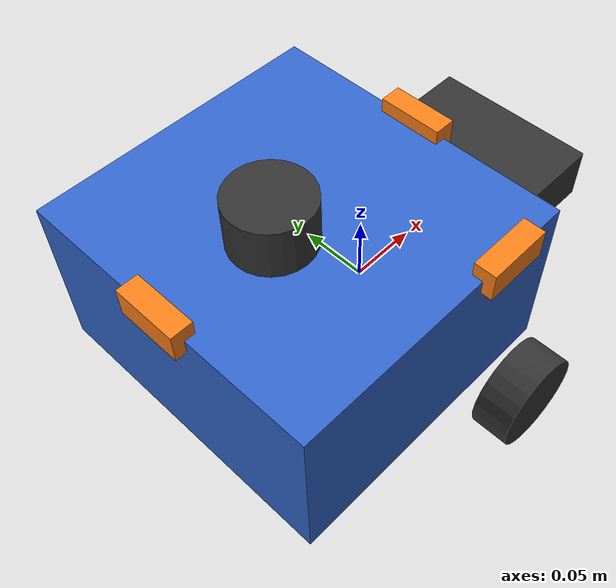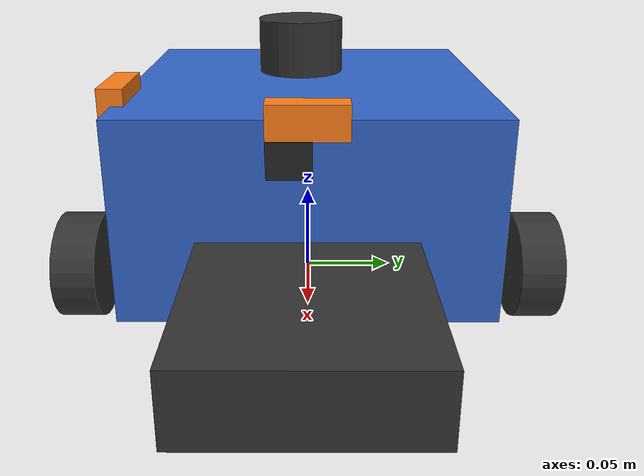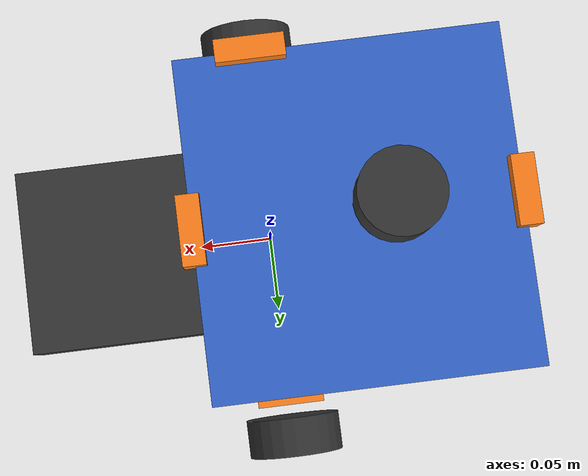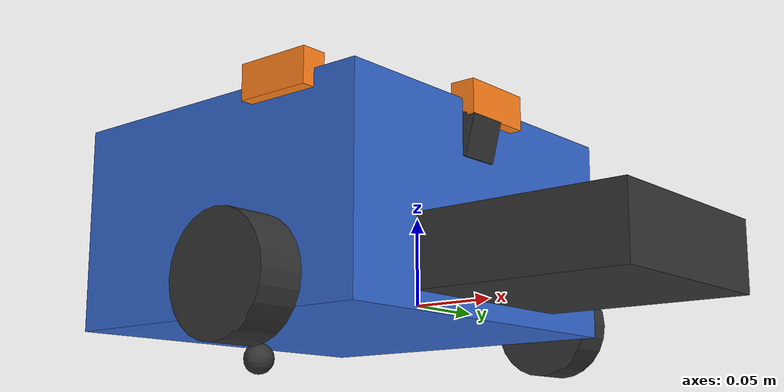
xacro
<?xml version="1.0"?>
<robot name="poli" xmlns:xacro="http://www.ros.org/wiki/xacro">

  <!-- ===== 차체 ===== -->
  <xacro:property name="wheel_radius" value="0.0325"/>       <!-- 바퀴 Ø65 mm (제품 사양서_E). 주행 시험으로 보정 (TODO_MEASURE) -->
  <xacro:property name="wheel_width" value="0.026"/>         <!-- 고무 바퀴 Ø65 × 26 mm (제품 사양서_E) -->
  <xacro:property name="wheel_separation" value="0.279"/>    <!-- 바퀴 포함 폭 305 - 바퀴 폭 26 (2026-10-30 줄자). 회전 시험으로 보정 (TODO_MEASURE, hardware.yaml과 같게) -->
  <xacro:property name="body_length" value="0.21"/>          <!-- 집게 제외 차체 길이 210 mm (2026-10-30 실측) -->
  <xacro:property name="body_width" value="0.22"/>           <!-- 바퀴 제외 차체 폭 220 mm (2026-10-30 실측) -->
  <xacro:property name="body_bottom_h" value="0.02"/>        <!-- 차체 바닥의 지면 높이 (TODO_MEASURE) -->
  <xacro:property name="body_top_h" value="0.14"/>           <!-- 차체 윗면의 지면 높이 (TODO_MEASURE) -->
  <!-- 2026-10-30 실측: 바퀴 축 = 차체 뒤끝에서 160 mm, 볼캐스터 = 뒤끝에서 30 mm (좌우 가운데) -->
  <xacro:property name="axle_from_rear" value="0.16"/>
  <xacro:property name="body_center_x" value="${body_length / 2 - axle_from_rear}"/>
  <xacro:property name="caster_x" value="${0.03 - axle_from_rear}"/>

  <!-- ===== LiDAR (RPLIDAR C1) =====
       laser 높이 = 장착면 높이 + 0.0298. 외벽·장애물(0.20 m)보다 낮아야 한다.
       frame 이름 'laser'는 sllidar_ros2 기본값·poli_navigation fake_scan과 같다. -->
  <xacro:property name="lidar_x" value="${0.08 - axle_from_rear}"/>  <!-- 중심이 뒤끝에서 약 80 mm: 사진 추정 (TODO_MEASURE, scan_to_grid.py LASER_OFFSET과 맞출 것) -->
  <xacro:property name="lidar_y" value="${body_width / 2 - 0.115}"/>  <!-- 중심이 좌측 끝에서 115 mm (2026-10-30 실측) = 오른쪽 5 mm -->
  <xacro:property name="lidar_mount_h" value="${body_top_h}"/>  <!-- 장착면 지면 높이 (TODO_MEASURE) -->
  <xacro:property name="lidar_yaw" value="0.0"/>             <!-- 스캔 0도 방향이 정면이 되게 (TODO_MEASURE) -->

  <!-- ===== IMU (MPU6050 GY-521, 파이 I2C 버스 3. 2026-10-30 RRC Lite 내장 IMU -> MPU6050) ===== -->
  <!-- 모듈의 X 화살표가 로봇 앞, 칩이 위면 yaw 0 -->
  <xacro:property name="imu_x" value="0.0"/>                 <!-- MPU6050 위치, base_link 기준 앞(+) (TODO_MEASURE) -->
  <xacro:property name="imu_y" value="0.0"/>                 <!-- 왼쪽(+) (TODO_MEASURE) -->
  <xacro:property name="imu_h" value="0.05"/>                <!-- 바닥에서 높이 (SIM_ONLY) -->
  <xacro:property name="imu_yaw" value="0.0"/>               <!-- X 화살표가 앞에서 반시계로 돈 각 [rad]. 제자리 반시계 회전 = +gz 확인 (TODO_MEASURE) -->
  <xacro:property name="tof_x" value="0.12"/>                <!-- 집게 VL53L0X 위치, 앞(+) (SIM_ONLY, TODO_MEASURE) -->
  <xacro:property name="tof_y" value="0.0"/>                 <!-- 왼쪽(+) (TODO_MEASURE) -->
  <xacro:property name="tof_h" value="0.03"/>                <!-- 바닥에서 높이 (SIM_ONLY, TODO_MEASURE) -->

  <!-- ===== 카메라 (Raspberry Pi AI Camera, CAM0) ===== -->
  <xacro:property name="camera_x" value="${body_center_x + body_length / 2}"/>  <!-- 2층 판 앞끝 (사진 확인) -->
  <xacro:property name="camera_y" value="${body_width / 2 - 0.12}"/>  <!-- 좌측 끝에서 120 mm (2026-10-30 실측) = 오른쪽 10 mm -->
  <xacro:property name="camera_h" value="0.12"/>             <!-- SIM_ONLY -->
  <xacro:property name="camera_pitch" value="0.26"/>         <!-- 아래로 숙인 각 (약 15도, SIM_ONLY) -->

  <!-- ===== 초음파 HC-SR04 x4 (docs/pin_map.md) =====
       frame의 +x = 센서가 보는 방향 (sensor_msgs/Range 규칙).
       전방·우측·후방은 지면에서 약 0.14 m, 좌측만 낮게 단다 (2026-09-30 결정). -->
  <xacro:property name="us_h" value="0.14"/>                 <!-- 전방·우측·후방 높이, 약 14 cm (TODO_MEASURE) -->
  <xacro:property name="us_left_h" value="0.05"/>            <!-- 좌측 센서 높이, "낮게" (TODO_MEASURE) -->
  <xacro:property name="us_front_x" value="${body_center_x + body_length / 2}"/>
  <xacro:property name="us_rear_x" value="${body_center_x - body_length / 2}"/>
  <xacro:property name="us_side_x" value="0.0"/>             <!-- 좌·우 센서 앞뒤 위치 (TODO_MEASURE) -->
  <xacro:property name="us_side_y" value="${body_width / 2}"/>

  <!-- ===== 집게 (Byte Robot Claw 125mm, 들어 올리기 없음) ===== -->
  <xacro:property name="gripper_len" value="0.12"/>          <!-- 차체 앞으로 튀어나온 길이: 전체 330 - 차체 210 (2026-10-30 실측, 닫힘) -->
  <xacro:property name="gripper_x" value="${body_center_x + body_length / 2 + gripper_len / 2}"/>
  <xacro:property name="gripper_h" value="0.05"/>            <!-- SIM_ONLY -->

  <material name="dark"><color rgba="0.2 0.2 0.2 1.0"/></material>
  <material name="blue"><color rgba="0.2 0.4 0.8 1.0"/></material>
  <material name="orange"><color rgba="1.0 0.5 0.1 1.0"/></material>

  <!-- ===== 링크 ===== -->
  <link name="base_link"/>

  <link name="chassis_link">
    <visual>
      <geometry><box size="${body_length} ${body_width} ${body_top_h - body_bottom_h}"/></geometry>
      <material name="blue"/>
    </visual>
    <collision>
      <geometry><box size="${body_length} ${body_width} ${body_top_h - body_bottom_h}"/></geometry>
    </collision>
  </link>
  <joint name="chassis_joint" type="fixed">
    <parent link="base_link"/>
    <child link="chassis_link"/>
    <origin xyz="${body_center_x} 0 ${(body_top_h + body_bottom_h) / 2 - wheel_radius}"/>
  </joint>

  <!-- 바퀴: 화면 표시용 고정 joint (회전 상태는 발행하지 않음) -->
  <xacro:macro name="wheel" params="side y">
    <link name="${side}_wheel_link">
      <visual>
        <origin rpy="${pi / 2} 0 0"/>
        <geometry><cylinder radius="${wheel_radius}" length="${wheel_width}"/></geometry>
        <material name="dark"/>
      </visual>
    </link>
    <joint name="${side}_wheel_joint" type="fixed">
      <parent link="base_link"/>
      <child link="${side}_wheel_link"/>
      <origin xyz="0 ${y} 0"/>
    </joint>
  </xacro:macro>
  <xacro:wheel side="left" y="${wheel_separation / 2}"/>
  <xacro:wheel side="right" y="${-wheel_separation / 2}"/>

  <link name="caster_link">
    <visual>
      <geometry><sphere radius="0.01"/></geometry>
      <material name="dark"/>
    </visual>
  </link>
  <joint name="caster_joint" type="fixed">
    <parent link="base_link"/>
    <child link="caster_link"/>
    <origin xyz="${caster_x} 0 ${0.01 - wheel_radius}"/>
  </joint>

  <link name="laser">
    <visual>
      <origin xyz="0 0 -0.0152"/>
      <geometry><cylinder radius="0.0278" length="0.0413"/></geometry>
      <material name="dark"/>
    </visual>
  </link>
  <joint name="laser_joint" type="fixed">
    <parent link="base_link"/>
    <child link="laser"/>
    <origin xyz="${lidar_x} ${lidar_y} ${lidar_mount_h + 0.0298 - wheel_radius}" rpy="0 0 ${lidar_yaw}"/>
  </joint>

  <link name="imu_link"/>
  <joint name="imu_joint" type="fixed">
    <parent link="base_link"/>
    <child link="imu_link"/>
    <origin xyz="${imu_x} ${imu_y} ${imu_h - wheel_radius}" rpy="0 0 ${imu_yaw}"/>
  </joint>

  <link name="gripper_tof_link"/>
  <joint name="gripper_tof_joint" type="fixed">
    <parent link="base_link"/>
    <child link="gripper_tof_link"/>
    <origin xyz="${tof_x} ${tof_y} ${tof_h - wheel_radius}" rpy="0 0 0"/>
  </joint>

  <link name="camera_link">
    <visual>
      <geometry><box size="0.01 0.025 0.024"/></geometry>
      <material name="dark"/>
    </visual>
  </link>
  <joint name="camera_joint" type="fixed">
    <parent link="base_link"/>
    <child link="camera_link"/>
    <origin xyz="${camera_x} ${camera_y} ${camera_h - wheel_radius}" rpy="0 ${camera_pitch} 0"/>
  </joint>

  <xacro:macro name="ultrasonic" params="name x y h yaw">
    <link name="ultrasonic_${name}_link">
      <visual>
        <geometry><box size="0.015 0.045 0.02"/></geometry>
        <material name="orange"/>
      </visual>
    </link>
    <joint name="ultrasonic_${name}_joint" type="fixed">
      <parent link="base_link"/>
      <child link="ultrasonic_${name}_link"/>
      <origin xyz="${x} ${y} ${h - wheel_radius}" rpy="0 0 ${yaw}"/>
    </joint>
  </xacro:macro>
  <xacro:ultrasonic name="front" x="${us_front_x}" y="0" h="${us_h}" yaw="0"/>
  <xacro:ultrasonic name="left" x="${us_side_x}" y="${us_side_y}" h="${us_left_h}" yaw="${pi / 2}"/>
  <xacro:ultrasonic name="right" x="${us_side_x}" y="${-us_side_y}" h="${us_h}" yaw="${-pi / 2}"/>
  <xacro:ultrasonic name="rear" x="${us_rear_x}" y="0" h="${us_h}" yaw="${pi}"/>

  <link name="gripper_link">
    <visual>
      <geometry><box size="${gripper_len} 0.125 0.04"/></geometry>
      <material name="dark"/>
    </visual>
  </link>
  <joint name="gripper_joint" type="fixed">
    <parent link="base_link"/>
    <child link="gripper_link"/>
    <origin xyz="${gripper_x} 0 ${gripper_h - wheel_radius}"/>
  </joint>

</robot>
